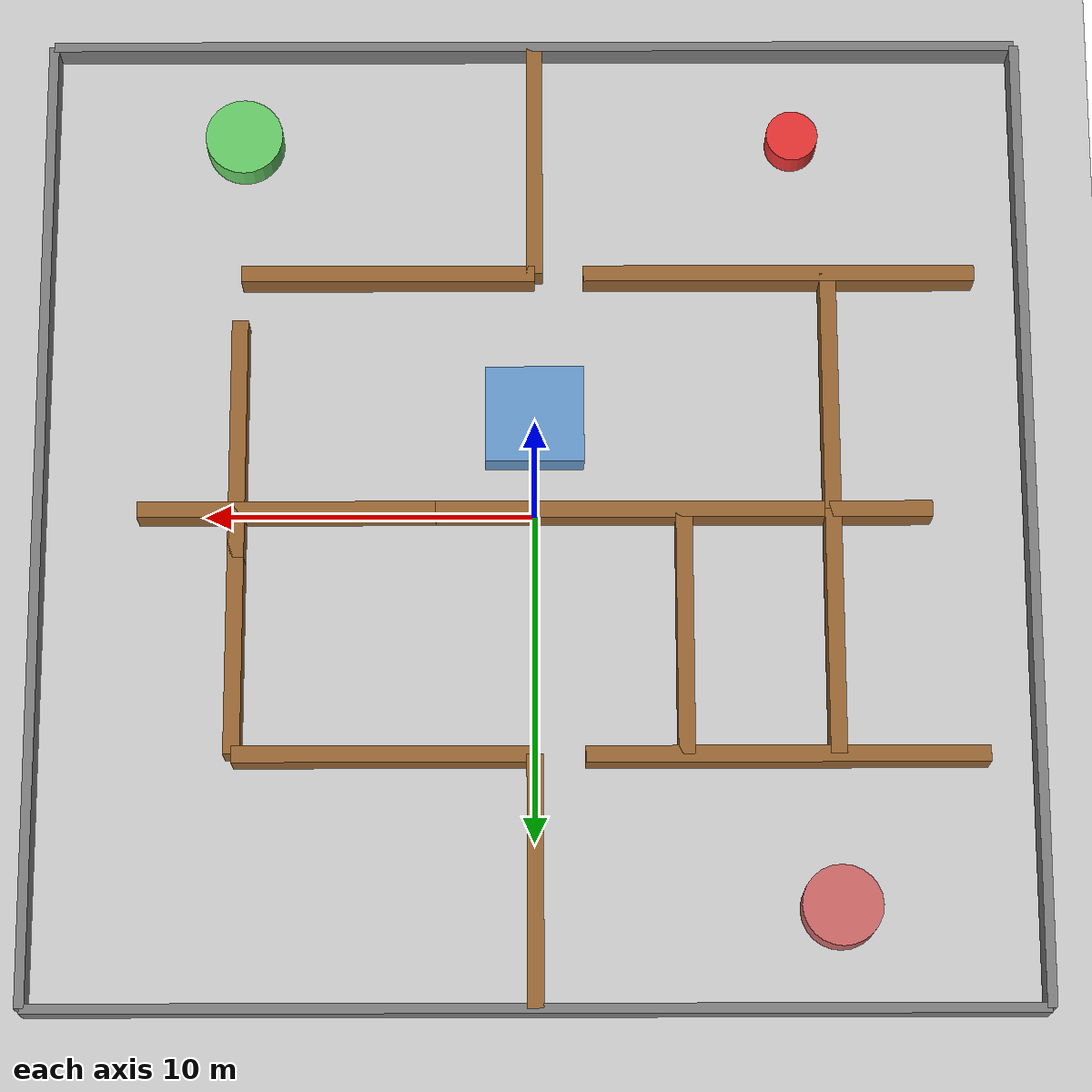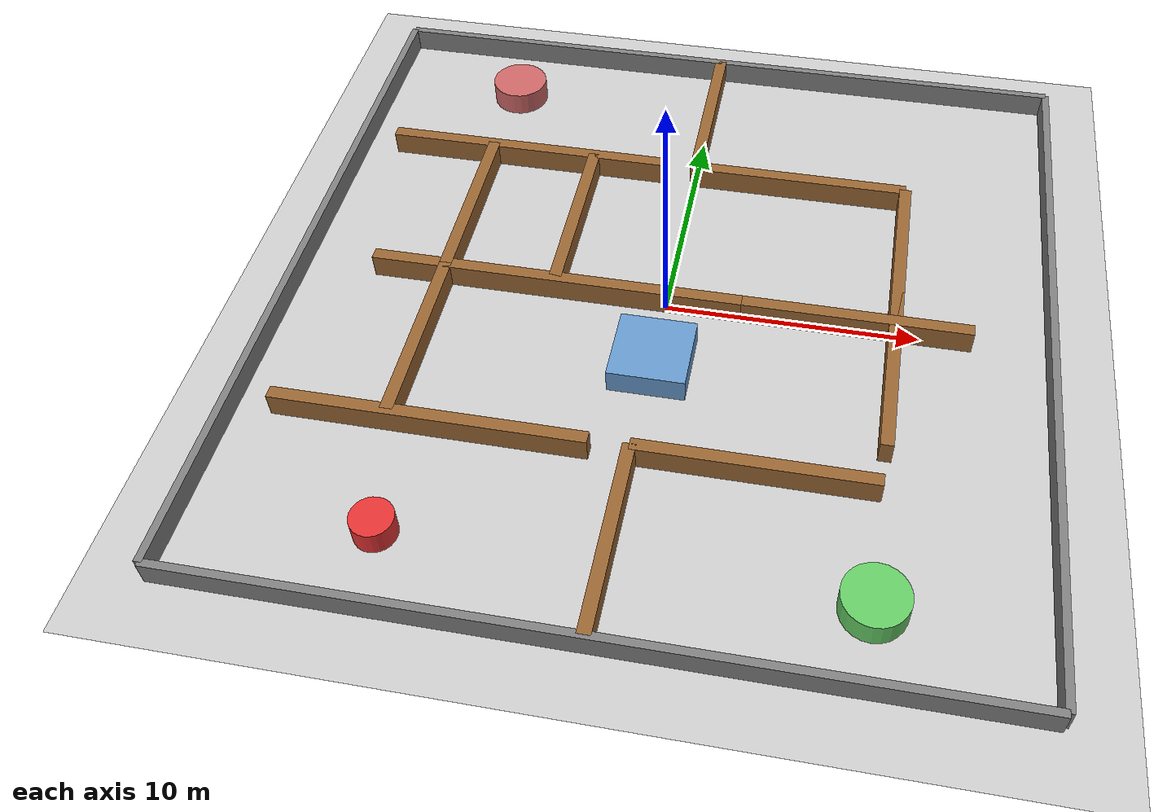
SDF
<?xml version="1.0" ?>
<sdf version="1.9">
  <world name="maze_world">

    <physics name="1ms" type="ignored">
      <max_step_size>0.001</max_step_size>
      <real_time_factor>1.0</real_time_factor>
    </physics>

    <!-- SYSTEM PLUGINS -->

    <plugin filename="gz-sim-physics-system"
            name="gz::sim::systems::Physics">
    </plugin>

    <plugin filename="gz-sim-scene-broadcaster-system"
            name="gz::sim::systems::SceneBroadcaster">
    </plugin>

    <plugin filename="gz-sim-user-commands-system"
            name="gz::sim::systems::UserCommands">
    </plugin>

    <plugin filename="gz-sim-sensors-system"
            name="gz::sim::systems::Sensors">
    </plugin>

    <!-- WORLD CONFIGURATION -->

    <gravity>0 0 -9.81</gravity>
    <magnetic_field>6e-6 2.3e-5 -4.2e-5</magnetic_field>

    <scene>
      <sky/>
      <ambient>0.4 0.4 0.4 1</ambient>
      <background>0.7 0.7 0.7 1</background>
    </scene>

    <light name="sun" type="directional">
      <pose>0.0 0.0 10.0 0 0 0</pose>
      <cast_shadows>true</cast_shadows>
      <diffuse>1 1 1 1</diffuse>
      <specular>0.2 0.2 0.2 1</specular>
      <direction>-0.5 0.5 -1</direction>
    </light>

    <!-- GROUND PLANE -->

    <model name="ground_plane">
      <static>true</static>
      <pose>0.0 0.0 0.0 0 0 0</pose>
      <link name="link">
        <collision name="collision">
          <geometry>
            <plane>
              <normal>0 0 1</normal>
              <size>30 30</size>
            </plane>
          </geometry>
        </collision>
        <visual name="visual">
          <geometry>
            <plane>
              <normal>0 0 1</normal>
              <size>30 30</size>
            </plane>
          </geometry>
          <material>
            <ambient>0.8 0.8 0.8 1</ambient>
            <diffuse>0.8 0.8 0.8 1</diffuse>
          </material>
        </visual>
      </link>
    </model>

    <!-- MAZE WALLS (1m tall, 0.2m thick) -->
    <!-- 30x30m maze -->

    <!-- Outer boundary walls -->
    <model name="wall_north">
      <static>true</static>
      <pose>0 15 0.5 0 0 0</pose>
      <link name="link">
        <collision name="collision">
          <geometry><box><size>30 0.3 1</size></box></geometry>
        </collision>
        <visual name="visual">
          <geometry><box><size>30 0.3 1</size></box></geometry>
          <material><diffuse>0.5 0.5 0.5 1</diffuse></material>
        </visual>
      </link>
    </model>

    <model name="wall_south">
      <static>true</static>
      <pose>0 -15 0.5 0 0 0</pose>
      <link name="link">
        <collision name="collision">
          <geometry><box><size>30 0.3 1</size></box></geometry>
        </collision>
        <visual name="visual">
          <geometry><box><size>30 0.3 1</size></box></geometry>
          <material><diffuse>0.5 0.5 0.5 1</diffuse></material>
        </visual>
      </link>
    </model>

    <model name="wall_east">
      <static>true</static>
      <pose>15 0 0.5 0 0 0</pose>
      <link name="link">
        <collision name="collision">
          <geometry><box><size>0.3 30 1</size></box></geometry>
        </collision>
        <visual name="visual">
          <geometry><box><size>0.3 30 1</size></box></geometry>
          <material><diffuse>0.5 0.5 0.5 1</diffuse></material>
        </visual>
      </link>
    </model>

    <model name="wall_west">
      <static>true</static>
      <pose>-15 0 0.5 0 0 0</pose>
      <link name="link">
        <collision name="collision">
          <geometry><box><size>0.3 30 1</size></box></geometry>
        </collision>
        <visual name="visual">
          <geometry><box><size>0.3 30 1</size></box></geometry>
          <material><diffuse>0.5 0.5 0.5 1</diffuse></material>
        </visual>
      </link>
    </model>

    <!-- Interior maze walls - scaled for 30x30m world -->

    <!-- Horizontal walls (scaled 60% from 50x50) -->
    <model name="wall_h1">
      <static>true</static>
      <pose>-7.5 7.5 0.5 0 0 0</pose>
      <link name="link">
        <collision name="collision"><geometry><box><size>12.0 0.5 1.0</size></box></geometry></collision>
        <visual name="visual"><geometry><box><size>12.0 0.5 1.0</size></box></geometry><material><diffuse>0.6 0.4 0.2 1</diffuse></material></visual>
      </link>
    </model>

    <model name="wall_h2">
      <static>true</static>
      <pose>4.5 7.5 0.5 0 0 0</pose>
      <link name="link">
        <collision name="collision"><geometry><box><size>9.0 0.5 1.0</size></box></geometry></collision>
        <visual name="visual"><geometry><box><size>9.0 0.5 1.0</size></box></geometry><material><diffuse>0.6 0.4 0.2 1</diffuse></material></visual>
      </link>
    </model>

    <model name="wall_h3">
      <static>true</static>
      <pose>-4.5 0.0 0.5 0 0 0</pose>
      <link name="link">
        <collision name="collision"><geometry><box><size>15.0 0.5 1.0</size></box></geometry></collision>
        <visual name="visual"><geometry><box><size>15.0 0.5 1.0</size></box></geometry><material><diffuse>0.6 0.4 0.2 1</diffuse></material></visual>
      </link>
    </model>

    <model name="wall_h4">
      <static>true</static>
      <pose>7.5 0.0 0.5 0 0 0</pose>
      <link name="link">
        <collision name="collision"><geometry><box><size>9.0 0.5 1.0</size></box></geometry></collision>
        <visual name="visual"><geometry><box><size>9.0 0.5 1.0</size></box></geometry><material><diffuse>0.6 0.4 0.2 1</diffuse></material></visual>
      </link>
    </model>

    <model name="wall_h5">
      <static>true</static>
      <pose>-7.5 -7.5 0.5 0 0 0</pose>
      <link name="link">
        <collision name="collision"><geometry><box><size>12.0 0.5 1.0</size></box></geometry></collision>
        <visual name="visual"><geometry><box><size>12.0 0.5 1.0</size></box></geometry><material><diffuse>0.6 0.4 0.2 1</diffuse></material></visual>
      </link>
    </model>

    <model name="wall_h6">
      <static>true</static>
      <pose>4.5 -7.5 0.5 0 0 0</pose>
      <link name="link">
        <collision name="collision"><geometry><box><size>9.0 0.5 1.0</size></box></geometry></collision>
        <visual name="visual"><geometry><box><size>9.0 0.5 1.0</size></box></geometry><material><diffuse>0.6 0.4 0.2 1</diffuse></material></visual>
      </link>
    </model>

    <!-- Vertical walls (scaled 60% from 50x50) -->
    <model name="wall_v1">
      <static>true</static>
      <pose>-9.0 3.75 0.5 0 0 0</pose>
      <link name="link">
        <collision name="collision"><geometry><box><size>0.5 7.5 1.0</size></box></geometry></collision>
        <visual name="visual"><geometry><box><size>0.5 7.5 1.0</size></box></geometry><material><diffuse>0.6 0.4 0.2 1</diffuse></material></visual>
      </link>
    </model>

    <model name="wall_v2">
      <static>true</static>
      <pose>-9.0 -3.75 0.5 0 0 0</pose>
      <link name="link">
        <collision name="collision"><geometry><box><size>0.5 7.5 1.0</size></box></geometry></collision>
        <visual name="visual"><geometry><box><size>0.5 7.5 1.0</size></box></geometry><material><diffuse>0.6 0.4 0.2 1</diffuse></material></visual>
      </link>
    </model>

    <model name="wall_v3">
      <static>true</static>
      <pose>0.0 11.25 0.5 0 0 0</pose>
      <link name="link">
        <collision name="collision"><geometry><box><size>0.5 7.5 1.0</size></box></geometry></collision>
        <visual name="visual"><geometry><box><size>0.5 7.5 1.0</size></box></geometry><material><diffuse>0.6 0.4 0.2 1</diffuse></material></visual>
      </link>
    </model>

    <model name="wall_v4">
      <static>true</static>
      <pose>0.0 -11.25 0.5 0 0 0</pose>
      <link name="link">
        <collision name="collision"><geometry><box><size>0.5 7.5 1.0</size></box></geometry></collision>
        <visual name="visual"><geometry><box><size>0.5 7.5 1.0</size></box></geometry><material><diffuse>0.6 0.4 0.2 1</diffuse></material></visual>
      </link>
    </model>

    <model name="wall_v5">
      <static>true</static>
      <pose>9.0 3.75 0.5 0 0 0</pose>
      <link name="link">
        <collision name="collision"><geometry><box><size>0.5 7.5 1.0</size></box></geometry></collision>
        <visual name="visual"><geometry><box><size>0.5 7.5 1.0</size></box></geometry><material><diffuse>0.6 0.4 0.2 1</diffuse></material></visual>
      </link>
    </model>

    <model name="wall_v6">
      <static>true</static>
      <pose>9.0 -2.25 0.5 0 0 0</pose>
      <link name="link">
        <collision name="collision"><geometry><box><size>0.5 7.5 1.0</size></box></geometry></collision>
        <visual name="visual"><geometry><box><size>0.5 7.5 1.0</size></box></geometry><material><diffuse>0.6 0.4 0.2 1</diffuse></material></visual>
      </link>
    </model>

    <model name="wall_v7">
      <static>true</static>
      <pose>-4.5 3.75 0.5 0 0 0</pose>
      <link name="link">
        <collision name="collision"><geometry><box><size>0.5 7.5 1.0</size></box></geometry></collision>
        <visual name="visual"><geometry><box><size>0.5 7.5 1.0</size></box></geometry><material><diffuse>0.6 0.4 0.2 1</diffuse></material></visual>
      </link>
    </model>

    <!-- Central obstacles (scaled 60%) -->
    <model name="obstacle_1">
      <static>true</static>
      <pose>0.0 -3.0 0.5 0 0 0</pose>
      <link name="link">
        <collision name="collision"><geometry><box><size>3.0 3.0 1.0</size></box></geometry></collision>
        <visual name="visual"><geometry><box><size>3.0 3.0 1.0</size></box></geometry><material><diffuse>0.4 0.6 0.8 1</diffuse></material></visual>
      </link>
    </model>

    <model name="obstacle_2">
      <static>true</static>
      <pose>-9.0 12.0 0.5 0 0 0</pose>
      <link name="link">
        <collision name="collision"><geometry><cylinder><radius>1.2</radius><length>1</length></cylinder></geometry></collision>
        <visual name="visual"><geometry><cylinder><radius>1.2</radius><length>1</length></cylinder></geometry><material><diffuse>0.8 0.4 0.4 1</diffuse></material></visual>
      </link>
    </model>

    <model name="obstacle_3">
      <static>true</static>
      <pose>9.0 -12.0 0.5 0 0 0</pose>
      <link name="link">
        <collision name="collision"><geometry><cylinder><radius>1.2</radius><length>1</length></cylinder></geometry></collision>
        <visual name="visual"><geometry><cylinder><radius>1.2</radius><length>1</length></cylinder></geometry><material><diffuse>0.4 0.8 0.4 1</diffuse></material></visual>
      </link>
    </model>

    <!-- Test pillar for loop closure detection (in front of tb3_1 spawn) -->
    <model name="test_pillar_south">
      <static>true</static>
      <pose>-8.0 -12.0 0.5 0 0 0</pose>
      <link name="link">
        <collision name="collision"><geometry><cylinder><radius>0.8</radius><length>1.0</length></cylinder></geometry></collision>
        <visual name="visual"><geometry><cylinder><radius>0.8</radius><length>1.0</length></cylinder></geometry><material><diffuse>0.9 0.2 0.2 1</diffuse></material></visual>
      </link>
    </model>

  </world>
</sdf>
